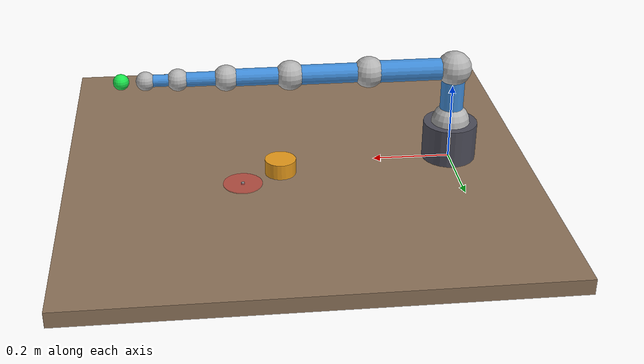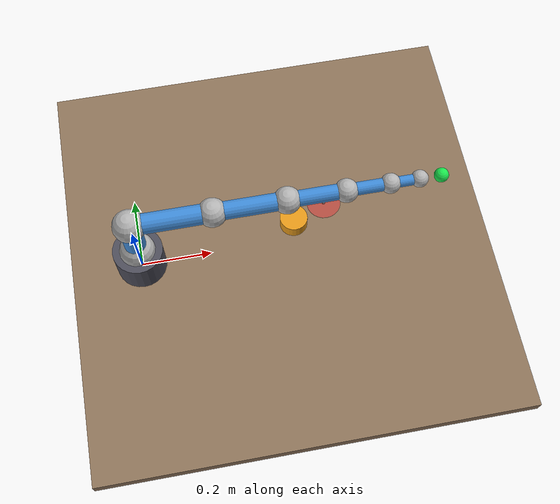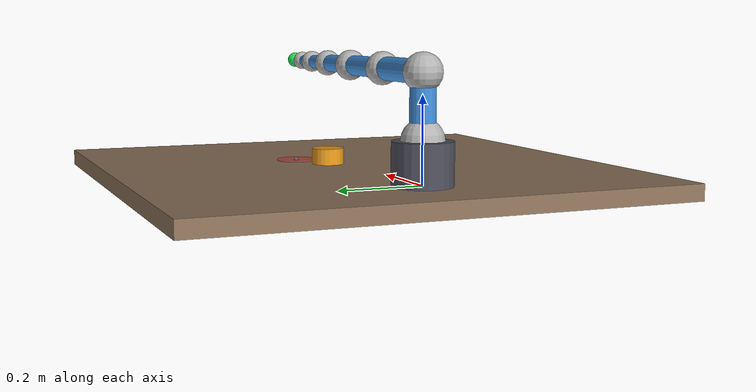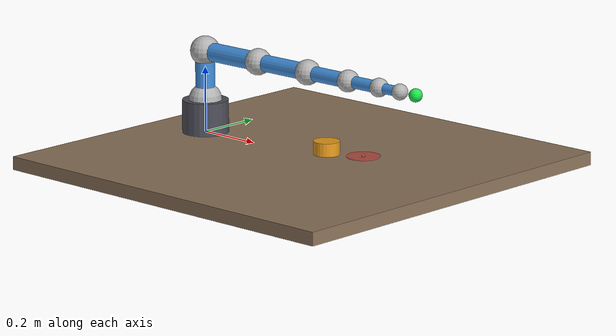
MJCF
<mujoco model="pusher">
  <compiler angle="radian" autolimits="true"/>
  <option timestep="0.01" gravity="0 0 -9.81" integrator="RK4"/>

  <visual>
    <headlight ambient="0.4 0.4 0.4" diffuse="0.8 0.8 0.8"/>
    <rgba haze="0.1 0.1 0.15 1"/>
  </visual>

  <default>
    <joint damping="1.0" armature="0.04"/>
    <geom condim="4" friction="1.0 0.1 0.1"/>
    <motor ctrllimited="true" ctrlrange="-1 1" gear="30"/>
  </default>

  <asset>
    <texture type="skybox" builtin="flat" rgb1="0.15 0.15 0.2" rgb2="0.05 0.05 0.1" width="256" height="256"/>
    <texture name="table_tex" type="2d" builtin="flat" rgb1="0.55 0.45 0.35" rgb2="0.55 0.45 0.35" width="64" height="64"/>
    <material name="table_mat"  texture="table_tex"/>
    <material name="arm_mat"    rgba="0.25 0.55 0.85 1"/>
    <material name="joint_mat"  rgba="0.7 0.7 0.7 1"/>
    <material name="ee_mat"     rgba="0.1 0.9 0.3 1"/>
    <material name="puck_mat"   rgba="0.9 0.6 0.1 1"/>
    <material name="goal_mat"   rgba="0.9 0.2 0.2 0.5"/>
    <material name="base_mat"   rgba="0.3 0.3 0.35 1"/>
  </asset>

  <worldbody>
    <light name="top"   pos="0 0 3" dir="0 0 -1" diffuse="0.7 0.7 0.7" castshadow="true"/>
    <light name="side"  pos="1 -1 2" dir="-0.5 0.5 -1" diffuse="0.4 0.4 0.4"/>

    <!-- Table surface -->
    <geom name="table" type="box" pos="0.4 0 -0.02" size="0.6 0.6 0.02" material="table_mat" contype="1" conaffinity="1"/>

    <!-- Robot base (fixed) -->
    <body name="base" pos="0 0 0">
      <geom name="base_geom" type="cylinder" pos="0 0 0.05" size="0.07 0.05" material="base_mat"/>

      <!-- Shoulder pan (z-axis, ±180°) -->
      <body name="shoulder_pan_link" pos="0 0 0.10">
        <joint name="shoulder_pan"  type="hinge" axis="0 0 1" range="-3.1416 3.1416" damping="1.0"/>
        <geom  name="sp_geom"       type="sphere"   size="0.05" material="joint_mat" mass="0.5"/>
        <geom  name="sp_link"       type="capsule"  fromto="0 0 0  0 0 0.15" size="0.03" material="arm_mat" mass="0.3"/>

        <!-- Shoulder lift (y-axis) -->
        <body name="shoulder_lift_link" pos="0 0 0.15">
          <joint name="shoulder_lift" type="hinge" axis="0 1 0" range="-1.570 1.570" damping="1.0"/>
          <geom  name="sl_geom"       type="sphere"   size="0.045" material="joint_mat" mass="0.5"/>
          <geom  name="sl_link"       type="capsule"  fromto="0 0 0  0.22 0 0" size="0.028" material="arm_mat" mass="0.5"/>

          <!-- Upper arm roll (x-axis) -->
          <body name="upper_arm_roll_link" pos="0.22 0 0">
            <joint name="upper_arm_roll" type="hinge" axis="1 0 0" range="-3.1416 3.1416" damping="0.5"/>
            <geom  name="uar_geom"       type="sphere"   size="0.04" material="joint_mat" mass="0.3"/>
            <geom  name="uar_link"       type="capsule"  fromto="0 0 0  0.20 0 0" size="0.025" material="arm_mat" mass="0.4"/>

            <!-- Elbow flex (y-axis) -->
            <body name="elbow_flex_link" pos="0.20 0 0">
              <joint name="elbow_flex"   type="hinge" axis="0 1 0" range="-2.356 0.000" damping="0.8"/>
              <geom  name="ef_geom"      type="sphere"   size="0.038" material="joint_mat" mass="0.3"/>
              <geom  name="ef_link"      type="capsule"  fromto="0 0 0  0.16 0 0" size="0.022" material="arm_mat" mass="0.3"/>

              <!-- Forearm roll (x-axis) -->
              <body name="forearm_roll_link" pos="0.16 0 0">
                <joint name="forearm_roll" type="hinge" axis="1 0 0" range="-3.1416 3.1416" damping="0.4"/>
                <geom  name="fr_geom"      type="sphere"   size="0.033" material="joint_mat" mass="0.2"/>
                <geom  name="fr_link"      type="capsule"  fromto="0 0 0  0.12 0 0" size="0.018" material="arm_mat" mass="0.2"/>

                <!-- Wrist flex (y-axis) -->
                <body name="wrist_flex_link" pos="0.12 0 0">
                  <joint name="wrist_flex"  type="hinge" axis="0 1 0" range="-1.833 1.833" damping="0.3"/>
                  <geom  name="wf_geom"     type="sphere"   size="0.028" material="joint_mat" mass="0.1"/>
                  <geom  name="wf_link"     type="capsule"  fromto="0 0 0  0.08 0 0" size="0.015" material="arm_mat" mass="0.1"/>

                  <!-- Wrist roll (x-axis) + end-effector -->
                  <body name="wrist_roll_link" pos="0.08 0 0">
                    <joint name="wrist_roll"    type="hinge" axis="1 0 0" range="-3.1416 3.1416" damping="0.2"/>
                    <geom  name="wr_geom"       type="sphere"   size="0.024" material="joint_mat" mass="0.08"/>
                    <!-- End-effector tip (pusher finger) -->
                    <geom  name="ee_tip"        type="sphere"   pos="0.06 0 0" size="0.020" material="ee_mat" mass="0.05"/>
                    <site  name="ee_site"       pos="0.06 0 0"  size="0.005"/>
                  </body>
                </body>
              </body>
            </body>
          </body>
        </body>
      </body>
    </body>

    <!-- Puck — free to slide on table (z locked near surface) -->
    <body name="puck" pos="0.45 0.05 0.02">
      <joint name="puck_x" type="slide" axis="1 0 0" range="-0.4 0.4" damping="0.5" limited="true"/>
      <joint name="puck_y" type="slide" axis="0 1 0" range="-0.4 0.4" damping="0.5" limited="true"/>
      <geom  name="puck_geom" type="cylinder" size="0.04 0.02" material="puck_mat"
             mass="0.3" friction="0.5 0.1 0.1" contype="1" conaffinity="1"/>
      <site  name="puck_site" pos="0 0 0" size="0.005"/>
    </body>

    <!-- Goal marker (visual only, moved at reset) -->
    <body name="goal" pos="0.55 0.10 0.001">
      <joint name="goal_x" type="slide" axis="1 0 0" range="-0.4 0.4" limited="true"/>
      <joint name="goal_y" type="slide" axis="0 1 0" range="-0.4 0.4" limited="true"/>
      <geom  name="goal_geom" type="cylinder" size="0.05 0.002" material="goal_mat"
             contype="0" conaffinity="0"/>
      <site  name="goal_site" pos="0 0 0" size="0.005"/>
    </body>

  </worldbody>

  <actuator>
    <motor name="sp_mot"  joint="shoulder_pan"  gear="30"/>
    <motor name="sl_mot"  joint="shoulder_lift" gear="30"/>
    <motor name="uar_mot" joint="upper_arm_roll" gear="20"/>
    <motor name="ef_mot"  joint="elbow_flex"    gear="30"/>
    <motor name="fr_mot"  joint="forearm_roll"  gear="15"/>
    <motor name="wf_mot"  joint="wrist_flex"    gear="15"/>
    <motor name="wr_mot"  joint="wrist_roll"    gear="10"/>
  </actuator>

  <sensor>
    <jointpos name="sp_pos"  joint="shoulder_pan"/>
    <jointpos name="sl_pos"  joint="shoulder_lift"/>
    <jointpos name="uar_pos" joint="upper_arm_roll"/>
    <jointpos name="ef_pos"  joint="elbow_flex"/>
    <jointpos name="fr_pos"  joint="forearm_roll"/>
    <jointpos name="wf_pos"  joint="wrist_flex"/>
    <jointpos name="wr_pos"  joint="wrist_roll"/>
    <framepos name="ee_pos"  objtype="site" objname="ee_site"/>
    <framepos name="puck_pos" objtype="site" objname="puck_site"/>
    <framepos name="goal_pos" objtype="site" objname="goal_site"/>
  </sensor>
</mujoco>
